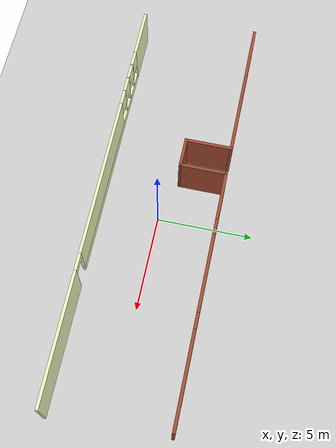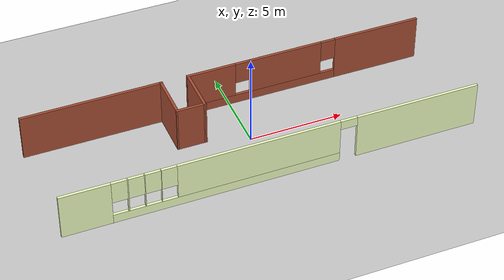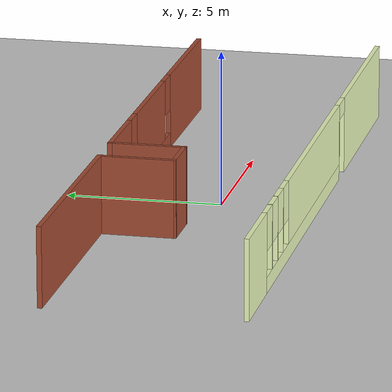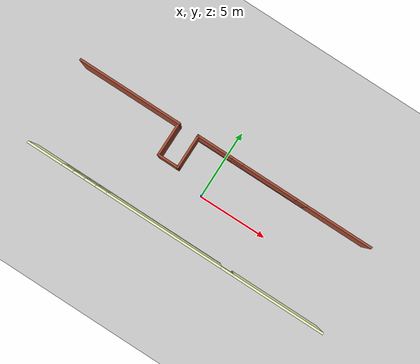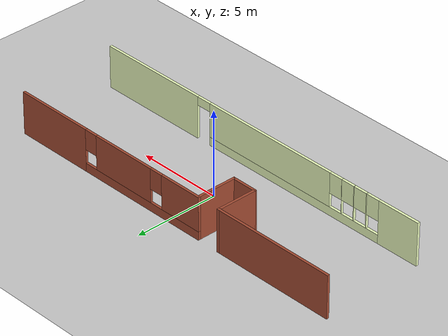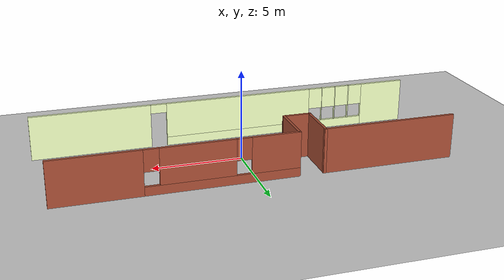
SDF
<sdf version="1.7">
 <world name="default">
  <physics type="ode">
   <ode>
    <solver>
     <type>quick</type>
     <iters>50</iters>
     <sor>1.4</sor>
     <use_dynamic_moi_rescaling>0</use_dynamic_moi_rescaling>
    </solver>
    <constraints>
     <cfm>0</cfm>
     <erp>0.2</erp>
     <contact_max_correcting_vel>100</contact_max_correcting_vel>
     <contact_surface_layer>0</contact_surface_layer>
    </constraints>
   </ode>
   <real_time_update_rate>1000</real_time_update_rate>
   <max_step_size>0.001</max_step_size>
   <real_time_factor>1</real_time_factor>
  </physics>
  <light name="sun" type="directional">
   <pose>0 0 10 0 -0 0</pose>
   <diffuse>0.8 0.8 0.8 1</diffuse>
   <specular>0.2 0.2 0.2 1</specular>
   <attenuation>
    <range>1000</range>
    <constant>0.9</constant>
    <linear>0.01</linear>
    <quadratic>0.001</quadratic>
   </attenuation>
   <direction>-0.5 0.1 -0.9</direction>
   <spot><inner_angle>0</inner_angle><outer_angle>0</outer_angle><falloff>0</falloff></spot>
  </light>
  <model name="ground_plane">
   <static>1</static>
   <link name="link">
    <collision name="collision">
     <geometry><plane><normal>0 0 1</normal><size>100 100</size></plane></geometry>
     <surface>
      <contact><collide_bitmask>65535</collide_bitmask></contact>
      <friction><ode><mu>100</mu><mu2>50</mu2></ode></friction>
     </surface>
    </collision>
    <visual name="visual">
     <cast_shadows>0</cast_shadows>
     <geometry><plane><normal>0 0 1</normal><size>100 100</size></plane></geometry>
     <material>
      <script><uri>file://media/materials/scripts/gazebo.material</uri><name>Gazebo/Grey</name></script>
     </material>
    </visual>
   </link>
  </model>
  <gravity>0 0 -9.81</gravity>
  <magnetic_field>6e-06 2.3e-05 -4.2e-05</magnetic_field>
  <atmosphere type="adiabatic"/>
  <scene><ambient>0.4 0.4 0.4 1</ambient><background>0.7 0.7 0.7 1</background><shadows>1</shadows></scene>
  <spherical_coordinates>
   <surface_model>EARTH_WGS84</surface_model>
   <latitude_deg>0</latitude_deg>
   <longitude_deg>0</longitude_deg>
   <elevation>0</elevation>
   <heading_deg>0</heading_deg>
  </spherical_coordinates>
  <model name="Corridor">
   <link name="wall_1">
    <collision name="wall_1_Collision">
     <geometry><box><size>2.5 0.15 2.5</size></box></geometry>
     <pose>0 0 1.25 0 -0 0</pose>
    </collision>
    <visual name="wall_1_Visual">
     <pose>0 0 1.25 0 -0 0</pose>
     <geometry><box><size>2.5 0.15 2.5</size></box></geometry>
     <material>
      <script><uri>file://media/materials/scripts/gazebo.material</uri><name>Gazebo/Bricks</name></script>
      <ambient>1 1 1 1</ambient>
     </material>
     <meta><layer>0</layer></meta>
    </visual>
    <pose>-2.19082 1.88318 0 0 -0 -1.5708</pose>
   </link>
   <link name="wall_2">
    <pose>4.22781 3.06385 0 0 -0 3.14159</pose>
    <visual name="wall_2_Visual_0">
     <pose>-4.11737 0 1.25 0 -0 0</pose>
     <geometry><box><size>4.76526 0.15 2.5</size></box></geometry>
     <material>
      <script><uri>file://media/materials/scripts/gazebo.material</uri><name>Gazebo/Bricks</name></script>
      <ambient>1 1 1 1</ambient>
     </material>
     <meta><layer>0</layer></meta>
    </visual>
    <collision name="wall_2_Collision_0">
     <geometry><box><size>4.76526 0.15 2.5</size></box></geometry>
     <pose>-4.11737 0 1.25 0 -0 0</pose>
    </collision>
    <visual name="wall_2_Visual_1">
     <pose>2.38263 0 0.25 0 -0 0</pose>
     <geometry><box><size>8.23474 0.15 0.5</size></box></geometry>
     <material>
      <script><uri>file://media/materials/scripts/gazebo.material</uri><name>Gazebo/Bricks</name></script>
      <ambient>1 1 1 1</ambient>
     </material>
     <meta><layer>0</layer></meta>
    </visual>
    <collision name="wall_2_Collision_1">
     <geometry><box><size>8.23474 0.15 0.5</size></box></geometry>
     <pose>2.38263 0 0.25 0 -0 0</pose>
    </collision>
    <visual name="wall_2_Visual_2">
     <pose>1.06064 0 1.5 0 -0 0</pose>
     <geometry><box><size>3.99076 0.15 2</size></box></geometry>
     <material>
      <script><uri>file://media/materials/scripts/gazebo.material</uri><name>Gazebo/Bricks</name></script>
      <ambient>1 1 1 1</ambient>
     </material>
     <meta><layer>0</layer></meta>
    </visual>
    <collision name="wall_2_Collision_2">
     <geometry><box><size>3.99076 0.15 2</size></box></geometry>
     <pose>1.06064 0 1.5 0 -0 0</pose>
    </collision>
    <visual name="wall_2_Visual_3">
     <pose>5.17801 0 1.5 0 -0 0</pose>
     <geometry><box><size>2.64398 0.15 2</size></box></geometry>
     <material>
      <script><uri>file://media/materials/scripts/gazebo.material</uri><name>Gazebo/Bricks</name></script>
      <ambient>1 1 1 1</ambient>
     </material>
     <meta><layer>0</layer></meta>
    </visual>
    <collision name="wall_2_Collision_3">
     <geometry><box><size>2.64398 0.15 2</size></box></geometry>
     <pose>5.17801 0 1.5 0 -0 0</pose>
    </collision>
    <visual name="wall_2_Visual_4">
     <pose>-1.33474 0 1.9 0 -0 0</pose>
     <geometry><box><size>0.8 0.15 1.2</size></box></geometry>
     <material>
      <script><uri>file://media/materials/scripts/gazebo.material</uri><name>Gazebo/Bricks</name></script>
      <ambient>1 1 1 1</ambient>
     </material>
     <meta><layer>0</layer></meta>
    </visual>
    <collision name="wall_2_Collision_4">
     <geometry><box><size>0.8 0.15 1.2</size></box></geometry>
     <pose>-1.33474 0 1.9 0 -0 0</pose>
    </collision>
    <visual name="wall_2_Visual_5">
     <pose>3.45601 0 1.9 0 -0 0</pose>
     <geometry><box><size>0.8 0.15 1.2</size></box></geometry>
     <material>
      <script><uri>file://media/materials/scripts/gazebo.material</uri><name>Gazebo/Bricks</name></script>
      <ambient>1 1 1 1</ambient>
     </material>
     <meta><layer>0</layer></meta>
    </visual>
    <collision name="wall_2_Collision_5">
     <geometry><box><size>0.8 0.15 1.2</size></box></geometry>
     <pose>3.45601 0 1.9 0 -0 0</pose>
    </collision>
   </link>
   <link name="wall_6">
    <pose>0.048529 -3.06385 0 0 -0 0</pose>
    <visual name="wall_6_Visual_0">
     <pose>-9.70328 0 1.25 0 -0 0</pose>
     <geometry><box><size>2.59345 0.15 2.5</size></box></geometry>
     <material>
      <script><uri>file://media/materials/scripts/gazebo.material</uri><name>Gazebo/Grey</name></script>
      <ambient>0.937255 1 0.752941 1</ambient>
     </material>
     <meta><layer>0</layer></meta>
    </visual>
    <collision name="wall_6_Collision_0">
     <geometry><box><size>2.59345 0.15 2.5</size></box></geometry>
     <pose>-9.70328 0 1.25 0 -0 0</pose>
    </collision>
    <visual name="wall_6_Visual_1">
     <pose>7.66835 0 1.25 0 -0 0</pose>
     <geometry><box><size>6.66331 0.15 2.5</size></box></geometry>
     <material>
      <script><uri>file://media/materials/scripts/gazebo.material</uri><name>Gazebo/Grey</name></script>
      <ambient>0.937255 1 0.752941 1</ambient>
     </material>
     <meta><layer>0</layer></meta>
    </visual>
    <collision name="wall_6_Collision_1">
     <geometry><box><size>6.66331 0.15 2.5</size></box></geometry>
     <pose>7.66835 0 1.25 0 -0 0</pose>
    </collision>
    <visual name="wall_6_Visual_2">
     <pose>-2.48493 0 0.25 0 -0 0</pose>
     <geometry><box><size>11.8432 0.15 0.5</size></box></geometry>
     <material>
      <script><uri>file://media/materials/scripts/gazebo.material</uri><name>Gazebo/Grey</name></script>
      <ambient>0.937255 1 0.752941 1</ambient>
     </material>
     <meta><layer>0</layer></meta>
    </visual>
    <collision name="wall_6_Collision_2">
     <geometry><box><size>11.8432 0.15 0.5</size></box></geometry>
     <pose>-2.48493 0 0.25 0 -0 0</pose>
    </collision>
    <visual name="wall_6_Visual_3">
     <pose>-7.58071 0 1.5 0 -0 0</pose>
     <geometry><box><size>0.05169 0.15 2</size></box></geometry>
     <material>
      <script><uri>file://media/materials/scripts/gazebo.material</uri><name>Gazebo/Grey</name></script>
      <ambient>0.937255 1 0.752941 1</ambient>
     </material>
     <meta><layer>0</layer></meta>
    </visual>
    <collision name="wall_6_Collision_3">
     <geometry><box><size>0.05169 0.15 2</size></box></geometry>
     <pose>-7.58071 0 1.5 0 -0 0</pose>
    </collision>
    <visual name="wall_6_Visual_4">
     <pose>-6.73662 0 1.5 0 -0 0</pose>
     <geometry><box><size>0.036481 0.15 2</size></box></geometry>
     <material>
      <script><uri>file://media/materials/scripts/gazebo.material</uri><name>Gazebo/Grey</name></script>
      <ambient>0.937255 1 0.752941 1</ambient>
     </material>
     <meta><layer>0</layer></meta>
    </visual>
    <collision name="wall_6_Collision_4">
     <geometry><box><size>0.036481 0.15 2</size></box></geometry>
     <pose>-6.73662 0 1.5 0 -0 0</pose>
    </collision>
    <visual name="wall_6_Visual_5">
     <pose>-5.90774 0 1.5 0 -0 0</pose>
     <geometry><box><size>0.021272 0.15 2</size></box></geometry>
     <material>
      <script><uri>file://media/materials/scripts/gazebo.material</uri><name>Gazebo/Grey</name></script>
      <ambient>0.937255 1 0.752941 1</ambient>
     </material>
     <meta><layer>0</layer></meta>
    </visual>
    <collision name="wall_6_Collision_5">
     <geometry><box><size>0.021272 0.15 2</size></box></geometry>
     <pose>-5.90774 0 1.5 0 -0 0</pose>
    </collision>
    <visual name="wall_6_Visual_6">
     <pose>-0.830208 0 1.5 0 -0 0</pose>
     <geometry><box><size>8.5338 0.15 2</size></box></geometry>
     <material>
      <script><uri>file://media/materials/scripts/gazebo.material</uri><name>Gazebo/Grey</name></script>
      <ambient>0.937255 1 0.752941 1</ambient>
     </material>
     <meta><layer>0</layer></meta>
    </visual>
    <collision name="wall_6_Collision_6">
     <geometry><box><size>8.5338 0.15 2</size></box></geometry>
     <pose>-0.830208 0 1.5 0 -0 0</pose>
    </collision>
    <visual name="wall_6_Visual_7">
     <pose>-8.00655 0 1.9 0 -0 0</pose>
     <geometry><box><size>0.8 0.15 1.2</size></box></geometry>
     <material>
      <script><uri>file://media/materials/scripts/gazebo.material</uri><name>Gazebo/Grey</name></script>
      <ambient>0.937255 1 0.752941 1</ambient>
     </material>
     <meta><layer>0</layer></meta>
    </visual>
    <collision name="wall_6_Collision_7">
     <geometry><box><size>0.8 0.15 1.2</size></box></geometry>
     <pose>-8.00655 0 1.9 0 -0 0</pose>
    </collision>
    <visual name="wall_6_Visual_8">
     <pose>-7.15486 0 1.9 0 -0 0</pose>
     <geometry><box><size>0.8 0.15 1.2</size></box></geometry>
     <material>
      <script><uri>file://media/materials/scripts/gazebo.material</uri><name>Gazebo/Grey</name></script>
      <ambient>0.937255 1 0.752941 1</ambient>
     </material>
     <meta><layer>0</layer></meta>
    </visual>
    <collision name="wall_6_Collision_8">
     <geometry><box><size>0.8 0.15 1.2</size></box></geometry>
     <pose>-7.15486 0 1.9 0 -0 0</pose>
    </collision>
    <visual name="wall_6_Visual_9">
     <pose>-6.31838 0 1.9 0 -0 0</pose>
     <geometry><box><size>0.8 0.15 1.2</size></box></geometry>
     <material>
      <script><uri>file://media/materials/scripts/gazebo.material</uri><name>Gazebo/Grey</name></script>
      <ambient>0.937255 1 0.752941 1</ambient>
     </material>
     <meta><layer>0</layer></meta>
    </visual>
    <collision name="wall_6_Collision_9">
     <geometry><box><size>0.8 0.15 1.2</size></box></geometry>
     <pose>-6.31838 0 1.9 0 -0 0</pose>
    </collision>
    <visual name="wall_6_Visual_10">
     <pose>-5.49711 0 1.9 0 -0 0</pose>
     <geometry><box><size>0.8 0.15 1.2</size></box></geometry>
     <material>
      <script><uri>file://media/materials/scripts/gazebo.material</uri><name>Gazebo/Grey</name></script>
      <ambient>0.937255 1 0.752941 1</ambient>
     </material>
     <meta><layer>0</layer></meta>
    </visual>
    <collision name="wall_6_Collision_10">
     <geometry><box><size>0.8 0.15 1.2</size></box></geometry>
     <pose>-5.49711 0 1.9 0 -0 0</pose>
    </collision>
    <visual name="wall_6_Visual_11">
     <pose>3.88669 0 2.25 0 -0 0</pose>
     <geometry><box><size>0.9 0.15 0.5</size></box></geometry>
     <material>
      <script><uri>file://media/materials/scripts/gazebo.material</uri><name>Gazebo/Grey</name></script>
      <ambient>0.937255 1 0.752941 1</ambient>
     </material>
     <meta><layer>0</layer></meta>
    </visual>
    <collision name="wall_6_Collision_11">
     <geometry><box><size>0.9 0.15 0.5</size></box></geometry>
     <pose>3.88669 0 2.25 0 -0 0</pose>
    </collision>
   </link>
   <link name="wall_3">
    <collision name="wall_3_Collision">
     <geometry><box><size>7.5 0.15 2.5</size></box></geometry>
     <pose>0 0 0 0 -0 1.57</pose>
    </collision>
    <visual name="wall_3_Visual">
     <pose>0 0 1.25 0 -0 0</pose>
     <geometry><box><size>7.5 0.15 2.5</size></box></geometry>
     <material>
      <script><uri>file://media/materials/scripts/gazebo.material</uri><name>Gazebo/Bricks</name></script>
      <ambient>1 1 1 1</ambient>
     </material>
     <meta><layer>0</layer></meta>
    </visual>
    <pose>-7.29853 3.06385 0 0 -0 3.14159</pose>
   </link>
   <link name="wall_4">
    <collision name="wall_4_Collision">
     <geometry><box><size>2.5 0.15 2.5</size></box></geometry>
     <pose>0 0 1.25 0 -0 0</pose>
    </collision>
    <visual name="wall_4_Visual">
     <pose>0 0 1.25 0 -0 0</pose>
     <geometry><box><size>2.5 0.15 2.5</size></box></geometry>
     <material>
      <script><uri>file://media/materials/scripts/gazebo.material</uri><name>Gazebo/Bricks</name></script>
      <ambient>1 1 1 1</ambient>
     </material>
     <meta><layer>0</layer></meta>
    </visual>
    <pose>-3.63874 1.88885 0 0 -0 1.5708</pose>
   </link>
   <link name="wall_5">
    <collision name="wall_5_Collision">
     <geometry><box><size>1.59792 0.15 2.5</size></box></geometry>
     <pose>0 0 1.25 0 -0 0</pose>
    </collision>
    <visual name="wall_5_Visual">
     <pose>0 0 1.25 0 -0 0</pose>
     <geometry><box><size>1.59792 0.15 2.5</size></box></geometry>
     <material>
      <script><uri>file://media/materials/scripts/gazebo.material</uri><name>Gazebo/Bricks</name></script>
      <ambient>1 1 1 1</ambient>
     </material>
     <meta><layer>0</layer></meta>
    </visual>
    <pose>-2.91478 0.711014 0 0 -0 3.13768</pose>
   </link>
   <static>1</static>
  </model>
 </world>
</sdf>
